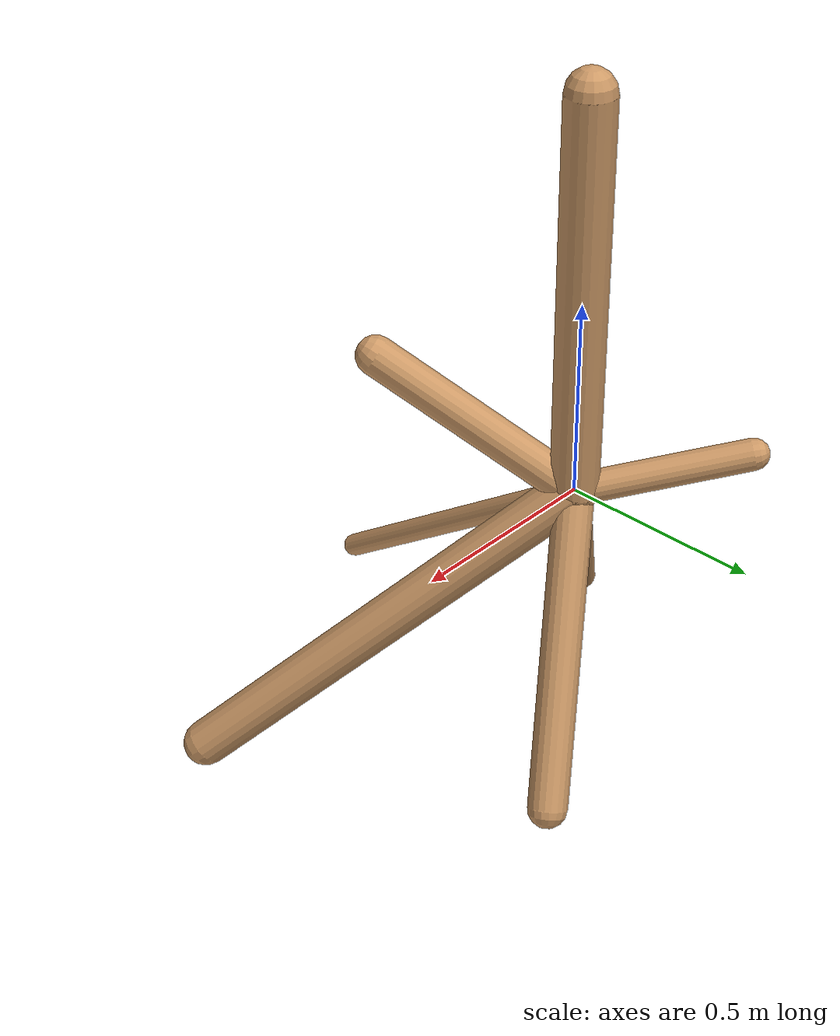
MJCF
<!--
                    joint_number: 6
                    -->
                    <mujoco model="randomrobot">
                        <compiler angle="degree" coordinate="global" inertiafromgeom="true"/>
                        <default>
                        <joint armature="0.01" damping=".1" limited="true"/>
                        <geom conaffinity="0" condim="3" contype="1" density="1000" friction="0.8 .1 .1" rgba="0.8 0.6 .4 1"/>
                        </default>
                        <option integrator="RK4" timestep="0.002"/>
                        <worldbody>
                    <body name='torso' pos='0.00 0.00 1.56'><geom fromto='0 0 0 0.00 0.00 1.00' name='torso_geom' size='0.06' type='capsule'/><inertial mass='0.3'/><body name='L0_D1' pos='0.00 0.00 0.85'><joint axis='1 0 0' name='L0_D1_joint' pos='0 0 0' range='47.62 86.11' type='hinge'/><geom fromto='0 0 0 0.03 -0.74 -0.51' name='L0_D1_geom' size='0.03' type='capsule'/><inertial mass='0.3'/><body name='L1_D0' pos='0.02 -0.44 -0.30'><joint axis='0 0 1' name='L1_D0_joint' pos='0 0 0' range='133.95 176.33' type='hinge'/><geom fromto='0 0 0 0.23 -0.43 0.30' name='L1_D0_geom' size='0.05' type='capsule'/><inertial mass='0.3'/></body><body name='L2_D0' pos='0.02 -0.48 -0.33'><joint axis='0 1 0' name='L2_D0_joint' pos='0 0 0' range='79.41 155.17' type='hinge'/><geom fromto='0 0 0 0.66 -0.67 -0.78' name='L2_D0_geom' size='0.06' type='capsule'/><inertial mass='0.3'/></body></body><body name='L3_D1' pos='0.00 0.00 0.08'><joint axis='1 0 0' name='L3_D1_joint' pos='0 0 0' range='46.50 146.47' type='hinge'/><geom fromto='0 0 0 -0.36 -0.25 -0.58' name='L3_D1_geom' size='0.04' type='capsule'/><inertial mass='0.3'/><body name='L4_D0' pos='-0.23 -0.16 -0.37'><joint axis='0 1 0' name='L4_D0_joint' pos='0 0 0' range='122.30 161.60' type='hinge'/><geom fromto='0 0 0 0.33 0.22 -0.67' name='L4_D0_geom' size='0.05' type='capsule'/><inertial mass='0.3'/></body><body name='L5_D0' pos='-0.13 -0.09 -0.21'><joint axis='0 0 1' name='L5_D0_joint' pos='0 0 0' range='96.79 103.57' type='hinge'/><geom fromto='0 0 0 -0.30 0.30 0.09' name='L5_D0_geom' size='0.04' type='capsule'/><inertial mass='0.3'/></body></body></body>
                        </worldbody>
                    </mujoco>
